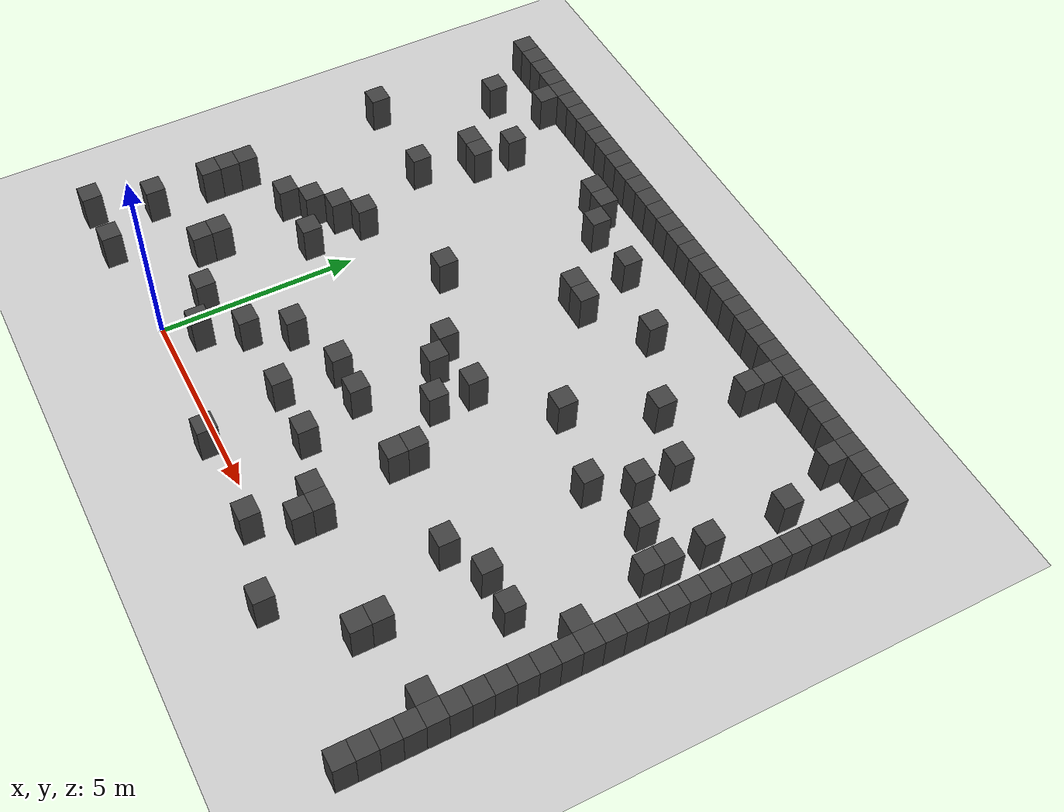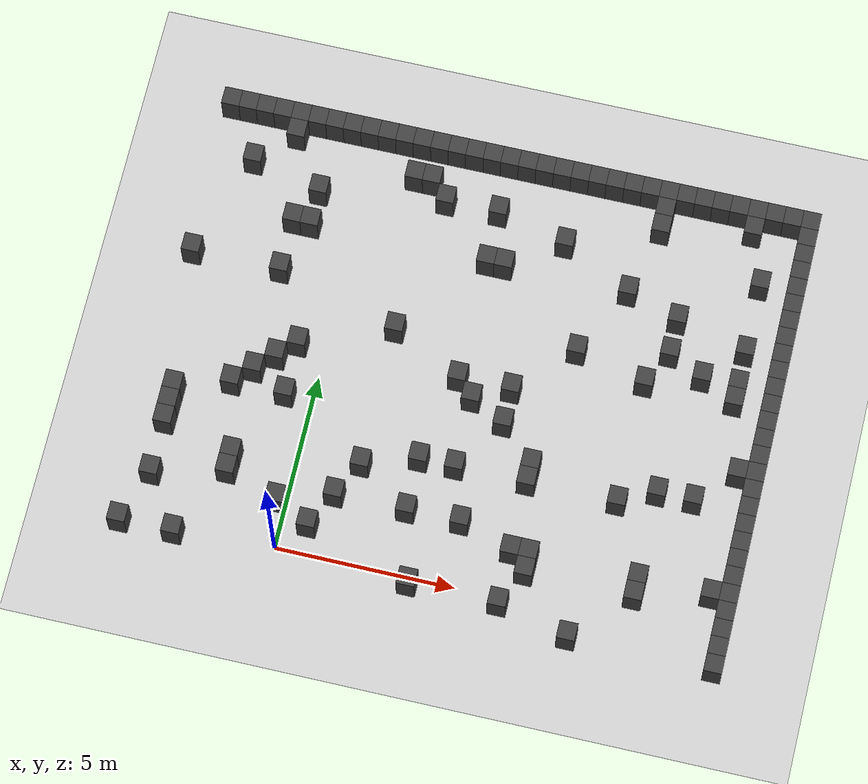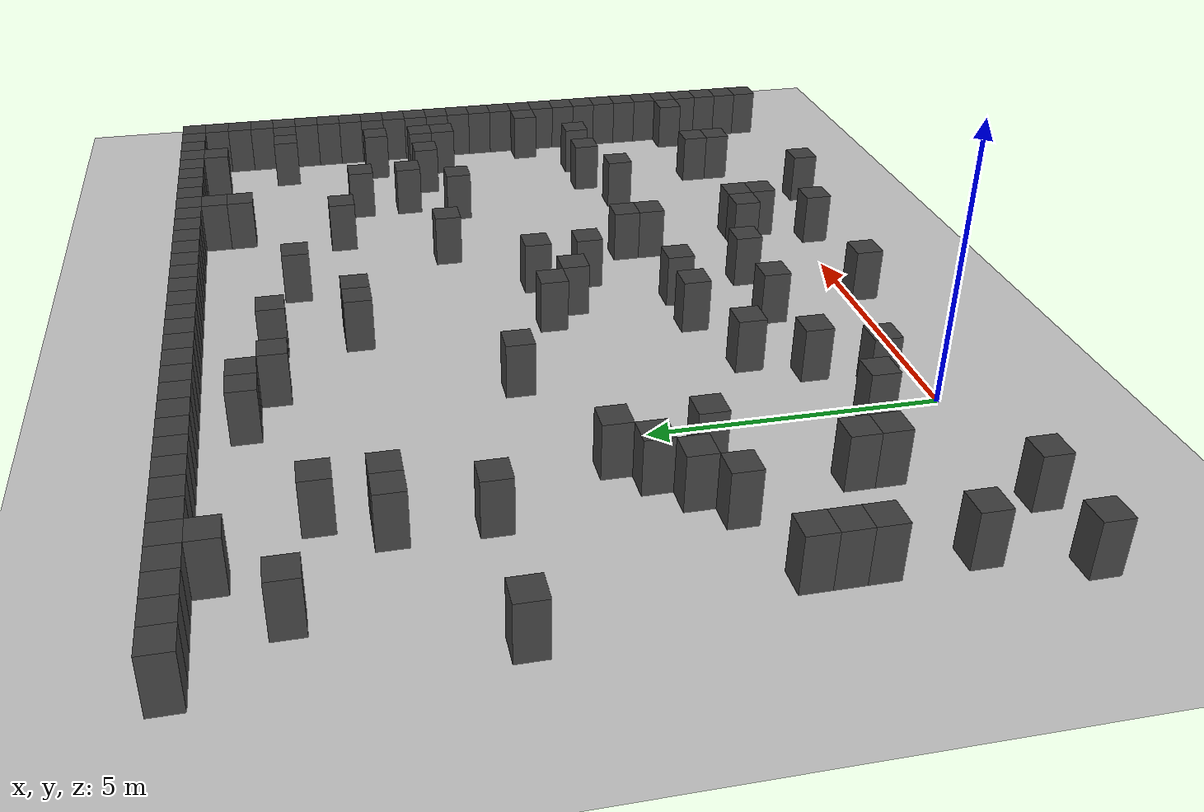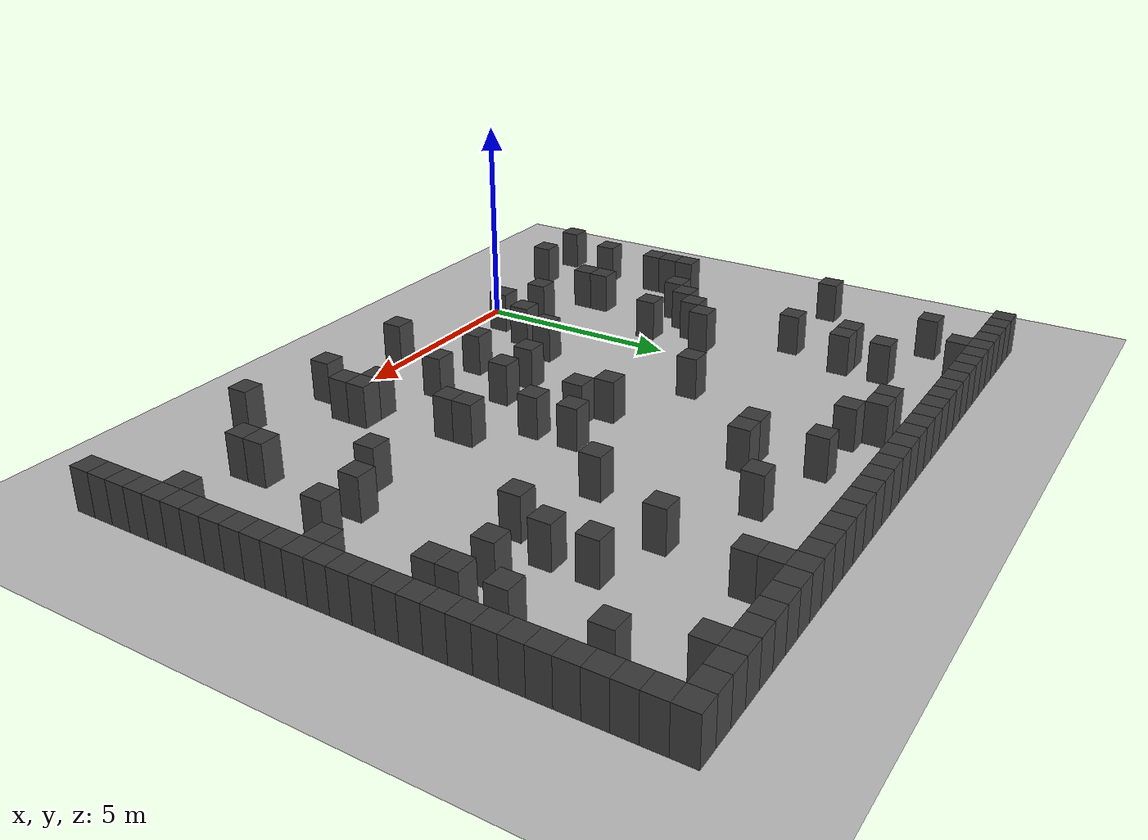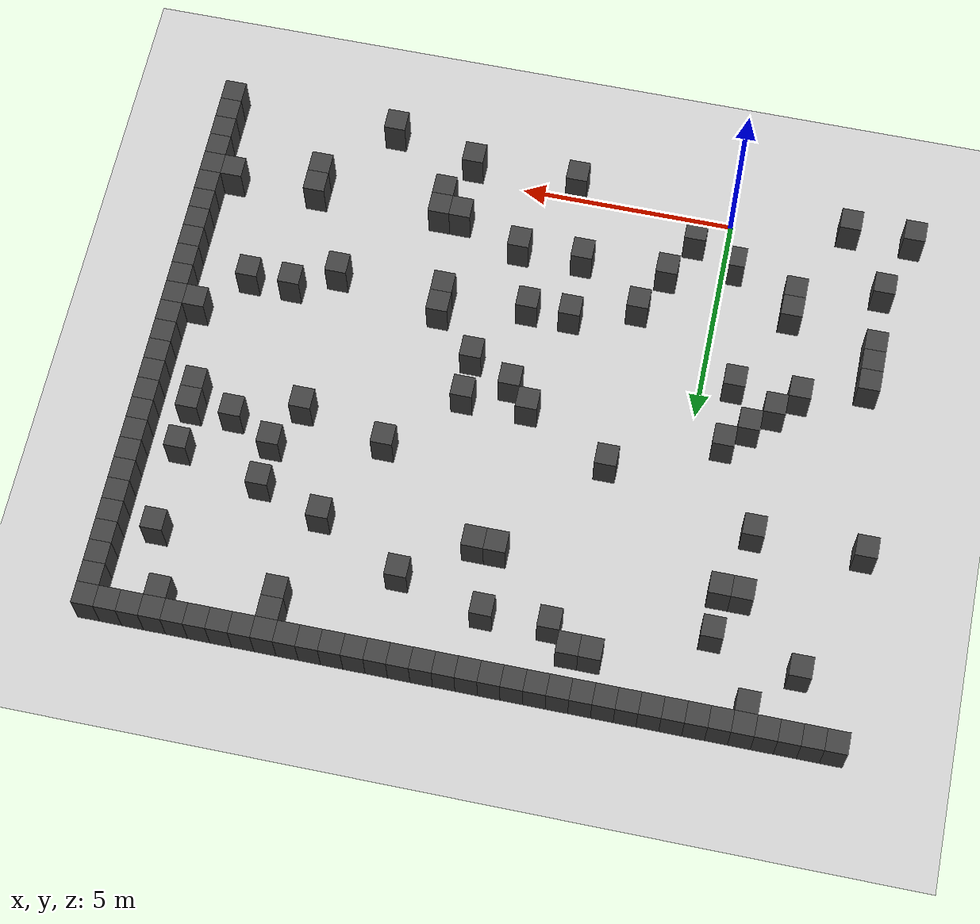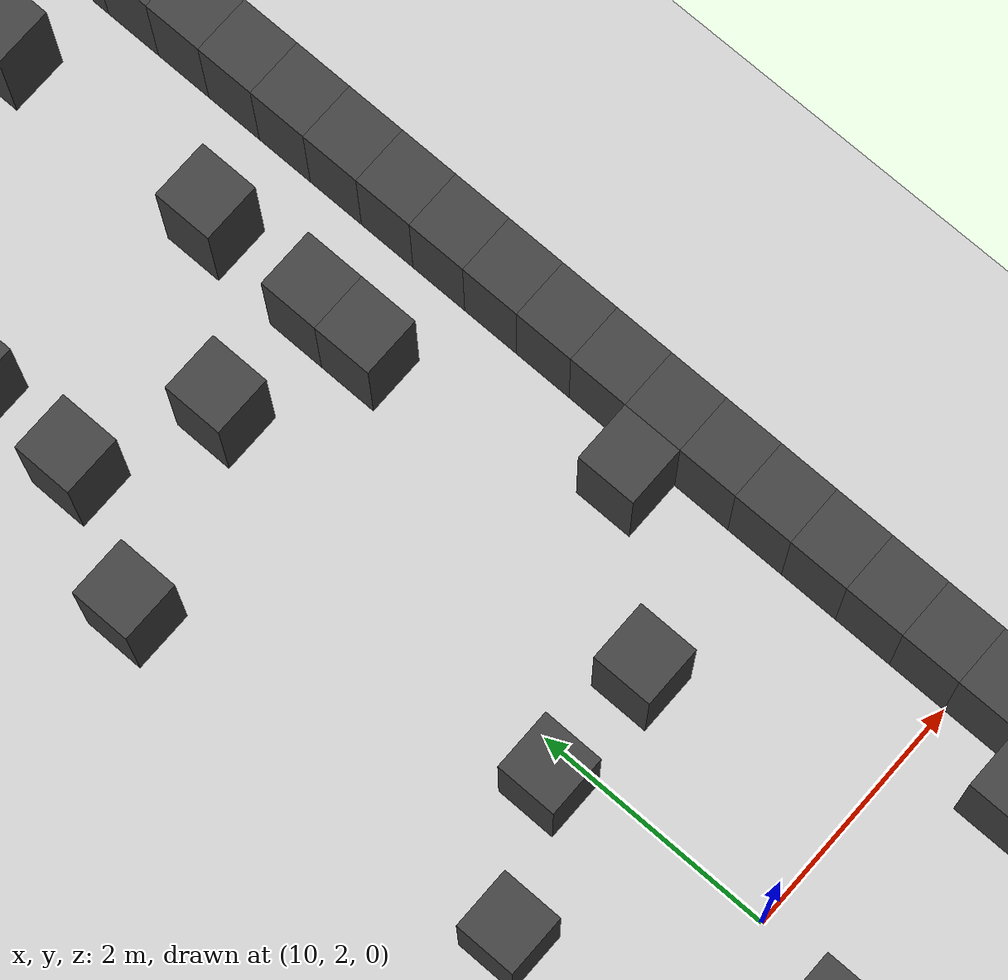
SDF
<sdf version="1.7">
 <world name="map_1352">
  <model name="ground_plane">
   <static>true</static>
   <link name="link">
    <collision name="collision">
     <geometry><plane><normal>0 0 1</normal><size>200 200</size></plane></geometry>
    </collision>
    <visual name="visual">
     <geometry><plane><normal>0 0 1</normal><size>200 200</size></plane></geometry>
     <material><ambient>0.8 0.8 0.8 1</ambient><diffuse>0.8 0.8 0.8 1</diffuse></material>
    </visual>
   </link>
  </model>
  <model name="maze_environment">
   <static>true</static>
   <link name="wall_16">
    <pose>-4.250 12.250 0.500 0 0 0</pose>
    <collision name="col"><geometry><box><size>0.5 0.5 1.0</size></box></geometry></collision>
    <visual name="vis">
     <geometry><box><size>0.5 0.5 1.0</size></box></geometry>
     <material><ambient>0.15 0.15 0.15 1</ambient><diffuse>0.25 0.25 0.25 1</diffuse></material>
    </visual>
   </link>
   <link name="wall_17">
    <pose>-3.750 12.250 0.500 0 0 0</pose>
    <collision name="col"><geometry><box><size>0.5 0.5 1.0</size></box></geometry></collision>
    <visual name="vis">
     <geometry><box><size>0.5 0.5 1.0</size></box></geometry>
     <material><ambient>0.15 0.15 0.15 1</ambient><diffuse>0.25 0.25 0.25 1</diffuse></material>
    </visual>
   </link>
   <link name="wall_18">
    <pose>-3.250 12.250 0.500 0 0 0</pose>
    <collision name="col"><geometry><box><size>0.5 0.5 1.0</size></box></geometry></collision>
    <visual name="vis">
     <geometry><box><size>0.5 0.5 1.0</size></box></geometry>
     <material><ambient>0.15 0.15 0.15 1</ambient><diffuse>0.25 0.25 0.25 1</diffuse></material>
    </visual>
   </link>
   <link name="wall_19">
    <pose>-2.750 12.250 0.500 0 0 0</pose>
    <collision name="col"><geometry><box><size>0.5 0.5 1.0</size></box></geometry></collision>
    <visual name="vis">
     <geometry><box><size>0.5 0.5 1.0</size></box></geometry>
     <material><ambient>0.15 0.15 0.15 1</ambient><diffuse>0.25 0.25 0.25 1</diffuse></material>
    </visual>
   </link>
   <link name="wall_20">
    <pose>-2.250 12.250 0.500 0 0 0</pose>
    <collision name="col"><geometry><box><size>0.5 0.5 1.0</size></box></geometry></collision>
    <visual name="vis">
     <geometry><box><size>0.5 0.5 1.0</size></box></geometry>
     <material><ambient>0.15 0.15 0.15 1</ambient><diffuse>0.25 0.25 0.25 1</diffuse></material>
    </visual>
   </link>
   <link name="wall_21">
    <pose>-1.750 12.250 0.500 0 0 0</pose>
    <collision name="col"><geometry><box><size>0.5 0.5 1.0</size></box></geometry></collision>
    <visual name="vis">
     <geometry><box><size>0.5 0.5 1.0</size></box></geometry>
     <material><ambient>0.15 0.15 0.15 1</ambient><diffuse>0.25 0.25 0.25 1</diffuse></material>
    </visual>
   </link>
   <link name="wall_22">
    <pose>-1.250 12.250 0.500 0 0 0</pose>
    <collision name="col"><geometry><box><size>0.5 0.5 1.0</size></box></geometry></collision>
    <visual name="vis">
     <geometry><box><size>0.5 0.5 1.0</size></box></geometry>
     <material><ambient>0.15 0.15 0.15 1</ambient><diffuse>0.25 0.25 0.25 1</diffuse></material>
    </visual>
   </link>
   <link name="wall_23">
    <pose>-0.750 12.250 0.500 0 0 0</pose>
    <collision name="col"><geometry><box><size>0.5 0.5 1.0</size></box></geometry></collision>
    <visual name="vis">
     <geometry><box><size>0.5 0.5 1.0</size></box></geometry>
     <material><ambient>0.15 0.15 0.15 1</ambient><diffuse>0.25 0.25 0.25 1</diffuse></material>
    </visual>
   </link>
   <link name="wall_24">
    <pose>-0.250 12.250 0.500 0 0 0</pose>
    <collision name="col"><geometry><box><size>0.5 0.5 1.0</size></box></geometry></collision>
    <visual name="vis">
     <geometry><box><size>0.5 0.5 1.0</size></box></geometry>
     <material><ambient>0.15 0.15 0.15 1</ambient><diffuse>0.25 0.25 0.25 1</diffuse></material>
    </visual>
   </link>
   <link name="wall_25">
    <pose>0.250 12.250 0.500 0 0 0</pose>
    <collision name="col"><geometry><box><size>0.5 0.5 1.0</size></box></geometry></collision>
    <visual name="vis">
     <geometry><box><size>0.5 0.5 1.0</size></box></geometry>
     <material><ambient>0.15 0.15 0.15 1</ambient><diffuse>0.25 0.25 0.25 1</diffuse></material>
    </visual>
   </link>
   <link name="wall_26">
    <pose>0.750 12.250 0.500 0 0 0</pose>
    <collision name="col"><geometry><box><size>0.5 0.5 1.0</size></box></geometry></collision>
    <visual name="vis">
     <geometry><box><size>0.5 0.5 1.0</size></box></geometry>
     <material><ambient>0.15 0.15 0.15 1</ambient><diffuse>0.25 0.25 0.25 1</diffuse></material>
    </visual>
   </link>
   <link name="wall_27">
    <pose>1.250 12.250 0.500 0 0 0</pose>
    <collision name="col"><geometry><box><size>0.5 0.5 1.0</size></box></geometry></collision>
    <visual name="vis">
     <geometry><box><size>0.5 0.5 1.0</size></box></geometry>
     <material><ambient>0.15 0.15 0.15 1</ambient><diffuse>0.25 0.25 0.25 1</diffuse></material>
    </visual>
   </link>
   <link name="wall_28">
    <pose>1.750 12.250 0.500 0 0 0</pose>
    <collision name="col"><geometry><box><size>0.5 0.5 1.0</size></box></geometry></collision>
    <visual name="vis">
     <geometry><box><size>0.5 0.5 1.0</size></box></geometry>
     <material><ambient>0.15 0.15 0.15 1</ambient><diffuse>0.25 0.25 0.25 1</diffuse></material>
    </visual>
   </link>
   <link name="wall_29">
    <pose>2.250 12.250 0.500 0 0 0</pose>
    <collision name="col"><geometry><box><size>0.5 0.5 1.0</size></box></geometry></collision>
    <visual name="vis">
     <geometry><box><size>0.5 0.5 1.0</size></box></geometry>
     <material><ambient>0.15 0.15 0.15 1</ambient><diffuse>0.25 0.25 0.25 1</diffuse></material>
    </visual>
   </link>
   <link name="wall_30">
    <pose>2.750 12.250 0.500 0 0 0</pose>
    <collision name="col"><geometry><box><size>0.5 0.5 1.0</size></box></geometry></collision>
    <visual name="vis">
     <geometry><box><size>0.5 0.5 1.0</size></box></geometry>
     <material><ambient>0.15 0.15 0.15 1</ambient><diffuse>0.25 0.25 0.25 1</diffuse></material>
    </visual>
   </link>
   <link name="wall_31">
    <pose>3.250 12.250 0.500 0 0 0</pose>
    <collision name="col"><geometry><box><size>0.5 0.5 1.0</size></box></geometry></collision>
    <visual name="vis">
     <geometry><box><size>0.5 0.5 1.0</size></box></geometry>
     <material><ambient>0.15 0.15 0.15 1</ambient><diffuse>0.25 0.25 0.25 1</diffuse></material>
    </visual>
   </link>
   <link name="wall_32">
    <pose>3.750 12.250 0.500 0 0 0</pose>
    <collision name="col"><geometry><box><size>0.5 0.5 1.0</size></box></geometry></collision>
    <visual name="vis">
     <geometry><box><size>0.5 0.5 1.0</size></box></geometry>
     <material><ambient>0.15 0.15 0.15 1</ambient><diffuse>0.25 0.25 0.25 1</diffuse></material>
    </visual>
   </link>
   <link name="wall_33">
    <pose>4.250 12.250 0.500 0 0 0</pose>
    <collision name="col"><geometry><box><size>0.5 0.5 1.0</size></box></geometry></collision>
    <visual name="vis">
     <geometry><box><size>0.5 0.5 1.0</size></box></geometry>
     <material><ambient>0.15 0.15 0.15 1</ambient><diffuse>0.25 0.25 0.25 1</diffuse></material>
    </visual>
   </link>
   <link name="wall_34">
    <pose>4.750 12.250 0.500 0 0 0</pose>
    <collision name="col"><geometry><box><size>0.5 0.5 1.0</size></box></geometry></collision>
    <visual name="vis">
     <geometry><box><size>0.5 0.5 1.0</size></box></geometry>
     <material><ambient>0.15 0.15 0.15 1</ambient><diffuse>0.25 0.25 0.25 1</diffuse></material>
    </visual>
   </link>
   <link name="wall_35">
    <pose>5.250 12.250 0.500 0 0 0</pose>
    <collision name="col"><geometry><box><size>0.5 0.5 1.0</size></box></geometry></collision>
    <visual name="vis">
     <geometry><box><size>0.5 0.5 1.0</size></box></geometry>
     <material><ambient>0.15 0.15 0.15 1</ambient><diffuse>0.25 0.25 0.25 1</diffuse></material>
    </visual>
   </link>
   <link name="wall_36">
    <pose>5.750 12.250 0.500 0 0 0</pose>
    <collision name="col"><geometry><box><size>0.5 0.5 1.0</size></box></geometry></collision>
    <visual name="vis">
     <geometry><box><size>0.5 0.5 1.0</size></box></geometry>
     <material><ambient>0.15 0.15 0.15 1</ambient><diffuse>0.25 0.25 0.25 1</diffuse></material>
    </visual>
   </link>
   <link name="wall_37">
    <pose>6.250 12.250 0.500 0 0 0</pose>
    <collision name="col"><geometry><box><size>0.5 0.5 1.0</size></box></geometry></collision>
    <visual name="vis">
     <geometry><box><size>0.5 0.5 1.0</size></box></geometry>
     <material><ambient>0.15 0.15 0.15 1</ambient><diffuse>0.25 0.25 0.25 1</diffuse></material>
    </visual>
   </link>
   <link name="wall_38">
    <pose>6.750 12.250 0.500 0 0 0</pose>
    <collision name="col"><geometry><box><size>0.5 0.5 1.0</size></box></geometry></collision>
    <visual name="vis">
     <geometry><box><size>0.5 0.5 1.0</size></box></geometry>
     <material><ambient>0.15 0.15 0.15 1</ambient><diffuse>0.25 0.25 0.25 1</diffuse></material>
    </visual>
   </link>
   <link name="wall_39">
    <pose>7.250 12.250 0.500 0 0 0</pose>
    <collision name="col"><geometry><box><size>0.5 0.5 1.0</size></box></geometry></collision>
    <visual name="vis">
     <geometry><box><size>0.5 0.5 1.0</size></box></geometry>
     <material><ambient>0.15 0.15 0.15 1</ambient><diffuse>0.25 0.25 0.25 1</diffuse></material>
    </visual>
   </link>
   <link name="wall_40">
    <pose>7.750 12.250 0.500 0 0 0</pose>
    <collision name="col"><geometry><box><size>0.5 0.5 1.0</size></box></geometry></collision>
    <visual name="vis">
     <geometry><box><size>0.5 0.5 1.0</size></box></geometry>
     <material><ambient>0.15 0.15 0.15 1</ambient><diffuse>0.25 0.25 0.25 1</diffuse></material>
    </visual>
   </link>
   <link name="wall_41">
    <pose>8.250 12.250 0.500 0 0 0</pose>
    <collision name="col"><geometry><box><size>0.5 0.5 1.0</size></box></geometry></collision>
    <visual name="vis">
     <geometry><box><size>0.5 0.5 1.0</size></box></geometry>
     <material><ambient>0.15 0.15 0.15 1</ambient><diffuse>0.25 0.25 0.25 1</diffuse></material>
    </visual>
   </link>
   <link name="wall_42">
    <pose>8.750 12.250 0.500 0 0 0</pose>
    <collision name="col"><geometry><box><size>0.5 0.5 1.0</size></box></geometry></collision>
    <visual name="vis">
     <geometry><box><size>0.5 0.5 1.0</size></box></geometry>
     <material><ambient>0.15 0.15 0.15 1</ambient><diffuse>0.25 0.25 0.25 1</diffuse></material>
    </visual>
   </link>
   <link name="wall_43">
    <pose>9.250 12.250 0.500 0 0 0</pose>
    <collision name="col"><geometry><box><size>0.5 0.5 1.0</size></box></geometry></collision>
    <visual name="vis">
     <geometry><box><size>0.5 0.5 1.0</size></box></geometry>
     <material><ambient>0.15 0.15 0.15 1</ambient><diffuse>0.25 0.25 0.25 1</diffuse></material>
    </visual>
   </link>
   <link name="wall_44">
    <pose>9.750 12.250 0.500 0 0 0</pose>
    <collision name="col"><geometry><box><size>0.5 0.5 1.0</size></box></geometry></collision>
    <visual name="vis">
     <geometry><box><size>0.5 0.5 1.0</size></box></geometry>
     <material><ambient>0.15 0.15 0.15 1</ambient><diffuse>0.25 0.25 0.25 1</diffuse></material>
    </visual>
   </link>
   <link name="wall_45">
    <pose>10.250 12.250 0.500 0 0 0</pose>
    <collision name="col"><geometry><box><size>0.5 0.5 1.0</size></box></geometry></collision>
    <visual name="vis">
     <geometry><box><size>0.5 0.5 1.0</size></box></geometry>
     <material><ambient>0.15 0.15 0.15 1</ambient><diffuse>0.25 0.25 0.25 1</diffuse></material>
    </visual>
   </link>
   <link name="wall_46">
    <pose>10.750 12.250 0.500 0 0 0</pose>
    <collision name="col"><geometry><box><size>0.5 0.5 1.0</size></box></geometry></collision>
    <visual name="vis">
     <geometry><box><size>0.5 0.5 1.0</size></box></geometry>
     <material><ambient>0.15 0.15 0.15 1</ambient><diffuse>0.25 0.25 0.25 1</diffuse></material>
    </visual>
   </link>
   <link name="wall_47">
    <pose>11.250 12.250 0.500 0 0 0</pose>
    <collision name="col"><geometry><box><size>0.5 0.5 1.0</size></box></geometry></collision>
    <visual name="vis">
     <geometry><box><size>0.5 0.5 1.0</size></box></geometry>
     <material><ambient>0.15 0.15 0.15 1</ambient><diffuse>0.25 0.25 0.25 1</diffuse></material>
    </visual>
   </link>
   <link name="wall_48">
    <pose>11.750 12.250 0.500 0 0 0</pose>
    <collision name="col"><geometry><box><size>0.5 0.5 1.0</size></box></geometry></collision>
    <visual name="vis">
     <geometry><box><size>0.5 0.5 1.0</size></box></geometry>
     <material><ambient>0.15 0.15 0.15 1</ambient><diffuse>0.25 0.25 0.25 1</diffuse></material>
    </visual>
   </link>
   <link name="wall_49">
    <pose>12.250 12.250 0.500 0 0 0</pose>
    <collision name="col"><geometry><box><size>0.5 0.5 1.0</size></box></geometry></collision>
    <visual name="vis">
     <geometry><box><size>0.5 0.5 1.0</size></box></geometry>
     <material><ambient>0.15 0.15 0.15 1</ambient><diffuse>0.25 0.25 0.25 1</diffuse></material>
    </visual>
   </link>
   <link name="wall_51">
    <pose>-2.250 11.750 0.500 0 0 0</pose>
    <collision name="col"><geometry><box><size>0.5 0.5 1.0</size></box></geometry></collision>
    <visual name="vis">
     <geometry><box><size>0.5 0.5 1.0</size></box></geometry>
     <material><ambient>0.15 0.15 0.15 1</ambient><diffuse>0.25 0.25 0.25 1</diffuse></material>
    </visual>
   </link>
   <link name="wall_52">
    <pose>8.250 11.750 0.500 0 0 0</pose>
    <collision name="col"><geometry><box><size>0.5 0.5 1.0</size></box></geometry></collision>
    <visual name="vis">
     <geometry><box><size>0.5 0.5 1.0</size></box></geometry>
     <material><ambient>0.15 0.15 0.15 1</ambient><diffuse>0.25 0.25 0.25 1</diffuse></material>
    </visual>
   </link>
   <link name="wall_53">
    <pose>10.750 11.750 0.500 0 0 0</pose>
    <collision name="col"><geometry><box><size>0.5 0.5 1.0</size></box></geometry></collision>
    <visual name="vis">
     <geometry><box><size>0.5 0.5 1.0</size></box></geometry>
     <material><ambient>0.15 0.15 0.15 1</ambient><diffuse>0.25 0.25 0.25 1</diffuse></material>
    </visual>
   </link>
   <link name="wall_54">
    <pose>12.250 11.750 0.500 0 0 0</pose>
    <collision name="col"><geometry><box><size>0.5 0.5 1.0</size></box></geometry></collision>
    <visual name="vis">
     <geometry><box><size>0.5 0.5 1.0</size></box></geometry>
     <material><ambient>0.15 0.15 0.15 1</ambient><diffuse>0.25 0.25 0.25 1</diffuse></material>
    </visual>
   </link>
   <link name="wall_61">
    <pose>1.250 11.250 0.500 0 0 0</pose>
    <collision name="col"><geometry><box><size>0.5 0.5 1.0</size></box></geometry></collision>
    <visual name="vis">
     <geometry><box><size>0.5 0.5 1.0</size></box></geometry>
     <material><ambient>0.15 0.15 0.15 1</ambient><diffuse>0.25 0.25 0.25 1</diffuse></material>
    </visual>
   </link>
   <link name="wall_62">
    <pose>1.750 11.250 0.500 0 0 0</pose>
    <collision name="col"><geometry><box><size>0.5 0.5 1.0</size></box></geometry></collision>
    <visual name="vis">
     <geometry><box><size>0.5 0.5 1.0</size></box></geometry>
     <material><ambient>0.15 0.15 0.15 1</ambient><diffuse>0.25 0.25 0.25 1</diffuse></material>
    </visual>
   </link>
   <link name="wall_63">
    <pose>8.250 11.250 0.500 0 0 0</pose>
    <collision name="col"><geometry><box><size>0.5 0.5 1.0</size></box></geometry></collision>
    <visual name="vis">
     <geometry><box><size>0.5 0.5 1.0</size></box></geometry>
     <material><ambient>0.15 0.15 0.15 1</ambient><diffuse>0.25 0.25 0.25 1</diffuse></material>
    </visual>
   </link>
   <link name="wall_64">
    <pose>12.250 11.250 0.500 0 0 0</pose>
    <collision name="col"><geometry><box><size>0.5 0.5 1.0</size></box></geometry></collision>
    <visual name="vis">
     <geometry><box><size>0.5 0.5 1.0</size></box></geometry>
     <material><ambient>0.15 0.15 0.15 1</ambient><diffuse>0.25 0.25 0.25 1</diffuse></material>
    </visual>
   </link>
   <link name="wall_67">
    <pose>-3.250 10.750 0.500 0 0 0</pose>
    <collision name="col"><geometry><box><size>0.5 0.5 1.0</size></box></geometry></collision>
    <visual name="vis">
     <geometry><box><size>0.5 0.5 1.0</size></box></geometry>
     <material><ambient>0.15 0.15 0.15 1</ambient><diffuse>0.25 0.25 0.25 1</diffuse></material>
    </visual>
   </link>
   <link name="wall_68">
    <pose>2.250 10.750 0.500 0 0 0</pose>
    <collision name="col"><geometry><box><size>0.5 0.5 1.0</size></box></geometry></collision>
    <visual name="vis">
     <geometry><box><size>0.5 0.5 1.0</size></box></geometry>
     <material><ambient>0.15 0.15 0.15 1</ambient><diffuse>0.25 0.25 0.25 1</diffuse></material>
    </visual>
   </link>
   <link name="wall_69">
    <pose>3.750 10.750 0.500 0 0 0</pose>
    <collision name="col"><geometry><box><size>0.5 0.5 1.0</size></box></geometry></collision>
    <visual name="vis">
     <geometry><box><size>0.5 0.5 1.0</size></box></geometry>
     <material><ambient>0.15 0.15 0.15 1</ambient><diffuse>0.25 0.25 0.25 1</diffuse></material>
    </visual>
   </link>
   <link name="wall_70">
    <pose>12.250 10.750 0.500 0 0 0</pose>
    <collision name="col"><geometry><box><size>0.5 0.5 1.0</size></box></geometry></collision>
    <visual name="vis">
     <geometry><box><size>0.5 0.5 1.0</size></box></geometry>
     <material><ambient>0.15 0.15 0.15 1</ambient><diffuse>0.25 0.25 0.25 1</diffuse></material>
    </visual>
   </link>
   <link name="wall_74">
    <pose>-1.250 10.250 0.500 0 0 0</pose>
    <collision name="col"><geometry><box><size>0.5 0.5 1.0</size></box></geometry></collision>
    <visual name="vis">
     <geometry><box><size>0.5 0.5 1.0</size></box></geometry>
     <material><ambient>0.15 0.15 0.15 1</ambient><diffuse>0.25 0.25 0.25 1</diffuse></material>
    </visual>
   </link>
   <link name="wall_75">
    <pose>5.750 10.250 0.500 0 0 0</pose>
    <collision name="col"><geometry><box><size>0.5 0.5 1.0</size></box></geometry></collision>
    <visual name="vis">
     <geometry><box><size>0.5 0.5 1.0</size></box></geometry>
     <material><ambient>0.15 0.15 0.15 1</ambient><diffuse>0.25 0.25 0.25 1</diffuse></material>
    </visual>
   </link>
   <link name="wall_76">
    <pose>11.250 10.250 0.500 0 0 0</pose>
    <collision name="col"><geometry><box><size>0.5 0.5 1.0</size></box></geometry></collision>
    <visual name="vis">
     <geometry><box><size>0.5 0.5 1.0</size></box></geometry>
     <material><ambient>0.15 0.15 0.15 1</ambient><diffuse>0.25 0.25 0.25 1</diffuse></material>
    </visual>
   </link>
   <link name="wall_77">
    <pose>12.250 10.250 0.500 0 0 0</pose>
    <collision name="col"><geometry><box><size>0.5 0.5 1.0</size></box></geometry></collision>
    <visual name="vis">
     <geometry><box><size>0.5 0.5 1.0</size></box></geometry>
     <material><ambient>0.15 0.15 0.15 1</ambient><diffuse>0.25 0.25 0.25 1</diffuse></material>
    </visual>
   </link>
   <link name="wall_79">
    <pose>12.250 9.750 0.500 0 0 0</pose>
    <collision name="col"><geometry><box><size>0.5 0.5 1.0</size></box></geometry></collision>
    <visual name="vis">
     <geometry><box><size>0.5 0.5 1.0</size></box></geometry>
     <material><ambient>0.15 0.15 0.15 1</ambient><diffuse>0.25 0.25 0.25 1</diffuse></material>
    </visual>
   </link>
   <link name="wall_81">
    <pose>-1.750 9.250 0.500 0 0 0</pose>
    <collision name="col"><geometry><box><size>0.5 0.5 1.0</size></box></geometry></collision>
    <visual name="vis">
     <geometry><box><size>0.5 0.5 1.0</size></box></geometry>
     <material><ambient>0.15 0.15 0.15 1</ambient><diffuse>0.25 0.25 0.25 1</diffuse></material>
    </visual>
   </link>
   <link name="wall_82">
    <pose>-1.250 9.250 0.500 0 0 0</pose>
    <collision name="col"><geometry><box><size>0.5 0.5 1.0</size></box></geometry></collision>
    <visual name="vis">
     <geometry><box><size>0.5 0.5 1.0</size></box></geometry>
     <material><ambient>0.15 0.15 0.15 1</ambient><diffuse>0.25 0.25 0.25 1</diffuse></material>
    </visual>
   </link>
   <link name="wall_83">
    <pose>3.750 9.250 0.500 0 0 0</pose>
    <collision name="col"><geometry><box><size>0.5 0.5 1.0</size></box></geometry></collision>
    <visual name="vis">
     <geometry><box><size>0.5 0.5 1.0</size></box></geometry>
     <material><ambient>0.15 0.15 0.15 1</ambient><diffuse>0.25 0.25 0.25 1</diffuse></material>
    </visual>
   </link>
   <link name="wall_84">
    <pose>4.250 9.250 0.500 0 0 0</pose>
    <collision name="col"><geometry><box><size>0.5 0.5 1.0</size></box></geometry></collision>
    <visual name="vis">
     <geometry><box><size>0.5 0.5 1.0</size></box></geometry>
     <material><ambient>0.15 0.15 0.15 1</ambient><diffuse>0.25 0.25 0.25 1</diffuse></material>
    </visual>
   </link>
   <link name="wall_85">
    <pose>7.750 9.250 0.500 0 0 0</pose>
    <collision name="col"><geometry><box><size>0.5 0.5 1.0</size></box></geometry></collision>
    <visual name="vis">
     <geometry><box><size>0.5 0.5 1.0</size></box></geometry>
     <material><ambient>0.15 0.15 0.15 1</ambient><diffuse>0.25 0.25 0.25 1</diffuse></material>
    </visual>
   </link>
   <link name="wall_86">
    <pose>12.250 9.250 0.500 0 0 0</pose>
    <collision name="col"><geometry><box><size>0.5 0.5 1.0</size></box></geometry></collision>
    <visual name="vis">
     <geometry><box><size>0.5 0.5 1.0</size></box></geometry>
     <material><ambient>0.15 0.15 0.15 1</ambient><diffuse>0.25 0.25 0.25 1</diffuse></material>
    </visual>
   </link>
   <link name="wall_89">
    <pose>9.250 8.750 0.500 0 0 0</pose>
    <collision name="col"><geometry><box><size>0.5 0.5 1.0</size></box></geometry></collision>
    <visual name="vis">
     <geometry><box><size>0.5 0.5 1.0</size></box></geometry>
     <material><ambient>0.15 0.15 0.15 1</ambient><diffuse>0.25 0.25 0.25 1</diffuse></material>
    </visual>
   </link>
   <link name="wall_90">
    <pose>12.250 8.750 0.500 0 0 0</pose>
    <collision name="col"><geometry><box><size>0.5 0.5 1.0</size></box></geometry></collision>
    <visual name="vis">
     <geometry><box><size>0.5 0.5 1.0</size></box></geometry>
     <material><ambient>0.15 0.15 0.15 1</ambient><diffuse>0.25 0.25 0.25 1</diffuse></material>
    </visual>
   </link>
   <link name="wall_92">
    <pose>11.250 8.250 0.500 0 0 0</pose>
    <collision name="col"><geometry><box><size>0.5 0.5 1.0</size></box></geometry></collision>
    <visual name="vis">
     <geometry><box><size>0.5 0.5 1.0</size></box></geometry>
     <material><ambient>0.15 0.15 0.15 1</ambient><diffuse>0.25 0.25 0.25 1</diffuse></material>
    </visual>
   </link>
   <link name="wall_93">
    <pose>12.250 8.250 0.500 0 0 0</pose>
    <collision name="col"><geometry><box><size>0.5 0.5 1.0</size></box></geometry></collision>
    <visual name="vis">
     <geometry><box><size>0.5 0.5 1.0</size></box></geometry>
     <material><ambient>0.15 0.15 0.15 1</ambient><diffuse>0.25 0.25 0.25 1</diffuse></material>
    </visual>
   </link>
   <link name="wall_97">
    <pose>-4.250 7.750 0.500 0 0 0</pose>
    <collision name="col"><geometry><box><size>0.5 0.5 1.0</size></box></geometry></collision>
    <visual name="vis">
     <geometry><box><size>0.5 0.5 1.0</size></box></geometry>
     <material><ambient>0.15 0.15 0.15 1</ambient><diffuse>0.25 0.25 0.25 1</diffuse></material>
    </visual>
   </link>
   <link name="wall_98">
    <pose>-1.750 7.750 0.500 0 0 0</pose>
    <collision name="col"><geometry><box><size>0.5 0.5 1.0</size></box></geometry></collision>
    <visual name="vis">
     <geometry><box><size>0.5 0.5 1.0</size></box></geometry>
     <material><ambient>0.15 0.15 0.15 1</ambient><diffuse>0.25 0.25 0.25 1</diffuse></material>
    </visual>
   </link>
   <link name="wall_99">
    <pose>9.250 7.750 0.500 0 0 0</pose>
    <collision name="col"><geometry><box><size>0.5 0.5 1.0</size></box></geometry></collision>
    <visual name="vis">
     <geometry><box><size>0.5 0.5 1.0</size></box></geometry>
     <material><ambient>0.15 0.15 0.15 1</ambient><diffuse>0.25 0.25 0.25 1</diffuse></material>
    </visual>
   </link>
   <link name="wall_100">
    <pose>12.250 7.750 0.500 0 0 0</pose>
    <collision name="col"><geometry><box><size>0.5 0.5 1.0</size></box></geometry></collision>
    <visual name="vis">
     <geometry><box><size>0.5 0.5 1.0</size></box></geometry>
     <material><ambient>0.15 0.15 0.15 1</ambient><diffuse>0.25 0.25 0.25 1</diffuse></material>
    </visual>
   </link>
   <link name="wall_102">
    <pose>6.750 7.250 0.500 0 0 0</pose>
    <collision name="col"><geometry><box><size>0.5 0.5 1.0</size></box></geometry></collision>
    <visual name="vis">
     <geometry><box><size>0.5 0.5 1.0</size></box></geometry>
     <material><ambient>0.15 0.15 0.15 1</ambient><diffuse>0.25 0.25 0.25 1</diffuse></material>
    </visual>
   </link>
   <link name="wall_103">
    <pose>10.250 7.250 0.500 0 0 0</pose>
    <collision name="col"><geometry><box><size>0.5 0.5 1.0</size></box></geometry></collision>
    <visual name="vis">
     <geometry><box><size>0.5 0.5 1.0</size></box></geometry>
     <material><ambient>0.15 0.15 0.15 1</ambient><diffuse>0.25 0.25 0.25 1</diffuse></material>
    </visual>
   </link>
   <link name="wall_104">
    <pose>11.250 7.250 0.500 0 0 0</pose>
    <collision name="col"><geometry><box><size>0.5 0.5 1.0</size></box></geometry></collision>
    <visual name="vis">
     <geometry><box><size>0.5 0.5 1.0</size></box></geometry>
     <material><ambient>0.15 0.15 0.15 1</ambient><diffuse>0.25 0.25 0.25 1</diffuse></material>
    </visual>
   </link>
   <link name="wall_105">
    <pose>12.250 7.250 0.500 0 0 0</pose>
    <collision name="col"><geometry><box><size>0.5 0.5 1.0</size></box></geometry></collision>
    <visual name="vis">
     <geometry><box><size>0.5 0.5 1.0</size></box></geometry>
     <material><ambient>0.15 0.15 0.15 1</ambient><diffuse>0.25 0.25 0.25 1</diffuse></material>
    </visual>
   </link>
   <link name="wall_109">
    <pose>1.750 6.750 0.500 0 0 0</pose>
    <collision name="col"><geometry><box><size>0.5 0.5 1.0</size></box></geometry></collision>
    <visual name="vis">
     <geometry><box><size>0.5 0.5 1.0</size></box></geometry>
     <material><ambient>0.15 0.15 0.15 1</ambient><diffuse>0.25 0.25 0.25 1</diffuse></material>
    </visual>
   </link>
   <link name="wall_110">
    <pose>8.750 6.750 0.500 0 0 0</pose>
    <collision name="col"><geometry><box><size>0.5 0.5 1.0</size></box></geometry></collision>
    <visual name="vis">
     <geometry><box><size>0.5 0.5 1.0</size></box></geometry>
     <material><ambient>0.15 0.15 0.15 1</ambient><diffuse>0.25 0.25 0.25 1</diffuse></material>
    </visual>
   </link>
   <link name="wall_111">
    <pose>11.250 6.750 0.500 0 0 0</pose>
    <collision name="col"><geometry><box><size>0.5 0.5 1.0</size></box></geometry></collision>
    <visual name="vis">
     <geometry><box><size>0.5 0.5 1.0</size></box></geometry>
     <material><ambient>0.15 0.15 0.15 1</ambient><diffuse>0.25 0.25 0.25 1</diffuse></material>
    </visual>
   </link>
   <link name="wall_112">
    <pose>12.250 6.750 0.500 0 0 0</pose>
    <collision name="col"><geometry><box><size>0.5 0.5 1.0</size></box></geometry></collision>
    <visual name="vis">
     <geometry><box><size>0.5 0.5 1.0</size></box></geometry>
     <material><ambient>0.15 0.15 0.15 1</ambient><diffuse>0.25 0.25 0.25 1</diffuse></material>
    </visual>
   </link>
   <link name="wall_117">
    <pose>12.250 6.250 0.500 0 0 0</pose>
    <collision name="col"><geometry><box><size>0.5 0.5 1.0</size></box></geometry></collision>
    <visual name="vis">
     <geometry><box><size>0.5 0.5 1.0</size></box></geometry>
     <material><ambient>0.15 0.15 0.15 1</ambient><diffuse>0.25 0.25 0.25 1</diffuse></material>
    </visual>
   </link>
   <link name="wall_121">
    <pose>-0.750 5.750 0.500 0 0 0</pose>
    <collision name="col"><geometry><box><size>0.5 0.5 1.0</size></box></geometry></collision>
    <visual name="vis">
     <geometry><box><size>0.5 0.5 1.0</size></box></geometry>
     <material><ambient>0.15 0.15 0.15 1</ambient><diffuse>0.25 0.25 0.25 1</diffuse></material>
    </visual>
   </link>
   <link name="wall_122">
    <pose>3.750 5.750 0.500 0 0 0</pose>
    <collision name="col"><geometry><box><size>0.5 0.5 1.0</size></box></geometry></collision>
    <visual name="vis">
     <geometry><box><size>0.5 0.5 1.0</size></box></geometry>
     <material><ambient>0.15 0.15 0.15 1</ambient><diffuse>0.25 0.25 0.25 1</diffuse></material>
    </visual>
   </link>
   <link name="wall_123">
    <pose>5.250 5.750 0.500 0 0 0</pose>
    <collision name="col"><geometry><box><size>0.5 0.5 1.0</size></box></geometry></collision>
    <visual name="vis">
     <geometry><box><size>0.5 0.5 1.0</size></box></geometry>
     <material><ambient>0.15 0.15 0.15 1</ambient><diffuse>0.25 0.25 0.25 1</diffuse></material>
    </visual>
   </link>
   <link name="wall_124">
    <pose>12.250 5.750 0.500 0 0 0</pose>
    <collision name="col"><geometry><box><size>0.5 0.5 1.0</size></box></geometry></collision>
    <visual name="vis">
     <geometry><box><size>0.5 0.5 1.0</size></box></geometry>
     <material><ambient>0.15 0.15 0.15 1</ambient><diffuse>0.25 0.25 0.25 1</diffuse></material>
    </visual>
   </link>
   <link name="wall_127">
    <pose>-1.250 5.250 0.500 0 0 0</pose>
    <collision name="col"><geometry><box><size>0.5 0.5 1.0</size></box></geometry></collision>
    <visual name="vis">
     <geometry><box><size>0.5 0.5 1.0</size></box></geometry>
     <material><ambient>0.15 0.15 0.15 1</ambient><diffuse>0.25 0.25 0.25 1</diffuse></material>
    </visual>
   </link>
   <link name="wall_128">
    <pose>4.250 5.250 0.500 0 0 0</pose>
    <collision name="col"><geometry><box><size>0.5 0.5 1.0</size></box></geometry></collision>
    <visual name="vis">
     <geometry><box><size>0.5 0.5 1.0</size></box></geometry>
     <material><ambient>0.15 0.15 0.15 1</ambient><diffuse>0.25 0.25 0.25 1</diffuse></material>
    </visual>
   </link>
   <link name="wall_129">
    <pose>12.250 5.250 0.500 0 0 0</pose>
    <collision name="col"><geometry><box><size>0.5 0.5 1.0</size></box></geometry></collision>
    <visual name="vis">
     <geometry><box><size>0.5 0.5 1.0</size></box></geometry>
     <material><ambient>0.15 0.15 0.15 1</ambient><diffuse>0.25 0.25 0.25 1</diffuse></material>
    </visual>
   </link>
   <link name="wall_131">
    <pose>-1.750 4.750 0.500 0 0 0</pose>
    <collision name="col"><geometry><box><size>0.5 0.5 1.0</size></box></geometry></collision>
    <visual name="vis">
     <geometry><box><size>0.5 0.5 1.0</size></box></geometry>
     <material><ambient>0.15 0.15 0.15 1</ambient><diffuse>0.25 0.25 0.25 1</diffuse></material>
    </visual>
   </link>
   <link name="wall_132">
    <pose>5.250 4.750 0.500 0 0 0</pose>
    <collision name="col"><geometry><box><size>0.5 0.5 1.0</size></box></geometry></collision>
    <visual name="vis">
     <geometry><box><size>0.5 0.5 1.0</size></box></geometry>
     <material><ambient>0.15 0.15 0.15 1</ambient><diffuse>0.25 0.25 0.25 1</diffuse></material>
    </visual>
   </link>
   <link name="wall_133">
    <pose>11.750 4.750 0.500 0 0 0</pose>
    <collision name="col"><geometry><box><size>0.5 0.5 1.0</size></box></geometry></collision>
    <visual name="vis">
     <geometry><box><size>0.5 0.5 1.0</size></box></geometry>
     <material><ambient>0.15 0.15 0.15 1</ambient><diffuse>0.25 0.25 0.25 1</diffuse></material>
    </visual>
   </link>
   <link name="wall_134">
    <pose>12.250 4.750 0.500 0 0 0</pose>
    <collision name="col"><geometry><box><size>0.5 0.5 1.0</size></box></geometry></collision>
    <visual name="vis">
     <geometry><box><size>0.5 0.5 1.0</size></box></geometry>
     <material><ambient>0.15 0.15 0.15 1</ambient><diffuse>0.25 0.25 0.25 1</diffuse></material>
    </visual>
   </link>
   <link name="wall_137">
    <pose>-2.250 4.250 0.500 0 0 0</pose>
    <collision name="col"><geometry><box><size>0.5 0.5 1.0</size></box></geometry></collision>
    <visual name="vis">
     <geometry><box><size>0.5 0.5 1.0</size></box></geometry>
     <material><ambient>0.15 0.15 0.15 1</ambient><diffuse>0.25 0.25 0.25 1</diffuse></material>
    </visual>
   </link>
   <link name="wall_138">
    <pose>-0.750 4.250 0.500 0 0 0</pose>
    <collision name="col"><geometry><box><size>0.5 0.5 1.0</size></box></geometry></collision>
    <visual name="vis">
     <geometry><box><size>0.5 0.5 1.0</size></box></geometry>
     <material><ambient>0.15 0.15 0.15 1</ambient><diffuse>0.25 0.25 0.25 1</diffuse></material>
    </visual>
   </link>
   <link name="wall_139">
    <pose>12.250 4.250 0.500 0 0 0</pose>
    <collision name="col"><geometry><box><size>0.5 0.5 1.0</size></box></geometry></collision>
    <visual name="vis">
     <geometry><box><size>0.5 0.5 1.0</size></box></geometry>
     <material><ambient>0.15 0.15 0.15 1</ambient><diffuse>0.25 0.25 0.25 1</diffuse></material>
    </visual>
   </link>
   <link name="wall_142">
    <pose>-3.750 3.750 0.500 0 0 0</pose>
    <collision name="col"><geometry><box><size>0.5 0.5 1.0</size></box></geometry></collision>
    <visual name="vis">
     <geometry><box><size>0.5 0.5 1.0</size></box></geometry>
     <material><ambient>0.15 0.15 0.15 1</ambient><diffuse>0.25 0.25 0.25 1</diffuse></material>
    </visual>
   </link>
   <link name="wall_143">
    <pose>6.250 3.750 0.500 0 0 0</pose>
    <collision name="col"><geometry><box><size>0.5 0.5 1.0</size></box></geometry></collision>
    <visual name="vis">
     <geometry><box><size>0.5 0.5 1.0</size></box></geometry>
     <material><ambient>0.15 0.15 0.15 1</ambient><diffuse>0.25 0.25 0.25 1</diffuse></material>
    </visual>
   </link>
   <link name="wall_144">
    <pose>9.750 3.750 0.500 0 0 0</pose>
    <collision name="col"><geometry><box><size>0.5 0.5 1.0</size></box></geometry></collision>
    <visual name="vis">
     <geometry><box><size>0.5 0.5 1.0</size></box></geometry>
     <material><ambient>0.15 0.15 0.15 1</ambient><diffuse>0.25 0.25 0.25 1</diffuse></material>
    </visual>
   </link>
   <link name="wall_145">
    <pose>10.750 3.750 0.500 0 0 0</pose>
    <collision name="col"><geometry><box><size>0.5 0.5 1.0</size></box></geometry></collision>
    <visual name="vis">
     <geometry><box><size>0.5 0.5 1.0</size></box></geometry>
     <material><ambient>0.15 0.15 0.15 1</ambient><diffuse>0.25 0.25 0.25 1</diffuse></material>
    </visual>
   </link>
   <link name="wall_146">
    <pose>12.250 3.750 0.500 0 0 0</pose>
    <collision name="col"><geometry><box><size>0.5 0.5 1.0</size></box></geometry></collision>
    <visual name="vis">
     <geometry><box><size>0.5 0.5 1.0</size></box></geometry>
     <material><ambient>0.15 0.15 0.15 1</ambient><diffuse>0.25 0.25 0.25 1</diffuse></material>
    </visual>
   </link>
   <link name="wall_148">
    <pose>-3.750 3.250 0.500 0 0 0</pose>
    <collision name="col"><geometry><box><size>0.5 0.5 1.0</size></box></geometry></collision>
    <visual name="vis">
     <geometry><box><size>0.5 0.5 1.0</size></box></geometry>
     <material><ambient>0.15 0.15 0.15 1</ambient><diffuse>0.25 0.25 0.25 1</diffuse></material>
    </visual>
   </link>
   <link name="wall_149">
    <pose>3.250 3.250 0.500 0 0 0</pose>
    <collision name="col"><geometry><box><size>0.5 0.5 1.0</size></box></geometry></collision>
    <visual name="vis">
     <geometry><box><size>0.5 0.5 1.0</size></box></geometry>
     <material><ambient>0.15 0.15 0.15 1</ambient><diffuse>0.25 0.25 0.25 1</diffuse></material>
    </visual>
   </link>
   <link name="wall_150">
    <pose>4.250 3.250 0.500 0 0 0</pose>
    <collision name="col"><geometry><box><size>0.5 0.5 1.0</size></box></geometry></collision>
    <visual name="vis">
     <geometry><box><size>0.5 0.5 1.0</size></box></geometry>
     <material><ambient>0.15 0.15 0.15 1</ambient><diffuse>0.25 0.25 0.25 1</diffuse></material>
    </visual>
   </link>
   <link name="wall_151">
    <pose>6.250 3.250 0.500 0 0 0</pose>
    <collision name="col"><geometry><box><size>0.5 0.5 1.0</size></box></geometry></collision>
    <visual name="vis">
     <geometry><box><size>0.5 0.5 1.0</size></box></geometry>
     <material><ambient>0.15 0.15 0.15 1</ambient><diffuse>0.25 0.25 0.25 1</diffuse></material>
    </visual>
   </link>
   <link name="wall_152">
    <pose>8.750 3.250 0.500 0 0 0</pose>
    <collision name="col"><geometry><box><size>0.5 0.5 1.0</size></box></geometry></collision>
    <visual name="vis">
     <geometry><box><size>0.5 0.5 1.0</size></box></geometry>
     <material><ambient>0.15 0.15 0.15 1</ambient><diffuse>0.25 0.25 0.25 1</diffuse></material>
    </visual>
   </link>
   <link name="wall_153">
    <pose>12.250 3.250 0.500 0 0 0</pose>
    <collision name="col"><geometry><box><size>0.5 0.5 1.0</size></box></geometry></collision>
    <visual name="vis">
     <geometry><box><size>0.5 0.5 1.0</size></box></geometry>
     <material><ambient>0.15 0.15 0.15 1</ambient><diffuse>0.25 0.25 0.25 1</diffuse></material>
    </visual>
   </link>
   <link name="wall_156">
    <pose>-3.750 2.750 0.500 0 0 0</pose>
    <collision name="col"><geometry><box><size>0.5 0.5 1.0</size></box></geometry></collision>
    <visual name="vis">
     <geometry><box><size>0.5 0.5 1.0</size></box></geometry>
     <material><ambient>0.15 0.15 0.15 1</ambient><diffuse>0.25 0.25 0.25 1</diffuse></material>
    </visual>
   </link>
   <link name="wall_157">
    <pose>1.750 2.750 0.500 0 0 0</pose>
    <collision name="col"><geometry><box><size>0.5 0.5 1.0</size></box></geometry></collision>
    <visual name="vis">
     <geometry><box><size>0.5 0.5 1.0</size></box></geometry>
     <material><ambient>0.15 0.15 0.15 1</ambient><diffuse>0.25 0.25 0.25 1</diffuse></material>
    </visual>
   </link>
   <link name="wall_158">
    <pose>12.250 2.750 0.500 0 0 0</pose>
    <collision name="col"><geometry><box><size>0.5 0.5 1.0</size></box></geometry></collision>
    <visual name="vis">
     <geometry><box><size>0.5 0.5 1.0</size></box></geometry>
     <material><ambient>0.15 0.15 0.15 1</ambient><diffuse>0.25 0.25 0.25 1</diffuse></material>
    </visual>
   </link>
   <link name="wall_160">
    <pose>-1.750 2.250 0.500 0 0 0</pose>
    <collision name="col"><geometry><box><size>0.5 0.5 1.0</size></box></geometry></collision>
    <visual name="vis">
     <geometry><box><size>0.5 0.5 1.0</size></box></geometry>
     <material><ambient>0.15 0.15 0.15 1</ambient><diffuse>0.25 0.25 0.25 1</diffuse></material>
    </visual>
   </link>
   <link name="wall_161">
    <pose>12.250 2.250 0.500 0 0 0</pose>
    <collision name="col"><geometry><box><size>0.5 0.5 1.0</size></box></geometry></collision>
    <visual name="vis">
     <geometry><box><size>0.5 0.5 1.0</size></box></geometry>
     <material><ambient>0.15 0.15 0.15 1</ambient><diffuse>0.25 0.25 0.25 1</diffuse></material>
    </visual>
   </link>
   <link name="wall_163">
    <pose>-1.750 1.750 0.500 0 0 0</pose>
    <collision name="col"><geometry><box><size>0.5 0.5 1.0</size></box></geometry></collision>
    <visual name="vis">
     <geometry><box><size>0.5 0.5 1.0</size></box></geometry>
     <material><ambient>0.15 0.15 0.15 1</ambient><diffuse>0.25 0.25 0.25 1</diffuse></material>
    </visual>
   </link>
   <link name="wall_164">
    <pose>1.250 1.750 0.500 0 0 0</pose>
    <collision name="col"><geometry><box><size>0.5 0.5 1.0</size></box></geometry></collision>
    <visual name="vis">
     <geometry><box><size>0.5 0.5 1.0</size></box></geometry>
     <material><ambient>0.15 0.15 0.15 1</ambient><diffuse>0.25 0.25 0.25 1</diffuse></material>
    </visual>
   </link>
   <link name="wall_165">
    <pose>3.250 1.750 0.500 0 0 0</pose>
    <collision name="col"><geometry><box><size>0.5 0.5 1.0</size></box></geometry></collision>
    <visual name="vis">
     <geometry><box><size>0.5 0.5 1.0</size></box></geometry>
     <material><ambient>0.15 0.15 0.15 1</ambient><diffuse>0.25 0.25 0.25 1</diffuse></material>
    </visual>
   </link>
   <link name="wall_166">
    <pose>4.750 1.750 0.500 0 0 0</pose>
    <collision name="col"><geometry><box><size>0.5 0.5 1.0</size></box></geometry></collision>
    <visual name="vis">
     <geometry><box><size>0.5 0.5 1.0</size></box></geometry>
     <material><ambient>0.15 0.15 0.15 1</ambient><diffuse>0.25 0.25 0.25 1</diffuse></material>
    </visual>
   </link>
   <link name="wall_167">
    <pose>12.250 1.750 0.500 0 0 0</pose>
    <collision name="col"><geometry><box><size>0.5 0.5 1.0</size></box></geometry></collision>
    <visual name="vis">
     <geometry><box><size>0.5 0.5 1.0</size></box></geometry>
     <material><ambient>0.15 0.15 0.15 1</ambient><diffuse>0.25 0.25 0.25 1</diffuse></material>
    </visual>
   </link>
   <link name="wall_172">
    <pose>-3.750 1.250 0.500 0 0 0</pose>
    <collision name="col"><geometry><box><size>0.5 0.5 1.0</size></box></geometry></collision>
    <visual name="vis">
     <geometry><box><size>0.5 0.5 1.0</size></box></geometry>
     <material><ambient>0.15 0.15 0.15 1</ambient><diffuse>0.25 0.25 0.25 1</diffuse></material>
    </visual>
   </link>
   <link name="wall_173">
    <pose>-0.250 1.250 0.500 0 0 0</pose>
    <collision name="col"><geometry><box><size>0.5 0.5 1.0</size></box></geometry></collision>
    <visual name="vis">
     <geometry><box><size>0.5 0.5 1.0</size></box></geometry>
     <material><ambient>0.15 0.15 0.15 1</ambient><diffuse>0.25 0.25 0.25 1</diffuse></material>
    </visual>
   </link>
   <link name="wall_174">
    <pose>6.250 1.250 0.500 0 0 0</pose>
    <collision name="col"><geometry><box><size>0.5 0.5 1.0</size></box></geometry></collision>
    <visual name="vis">
     <geometry><box><size>0.5 0.5 1.0</size></box></geometry>
     <material><ambient>0.15 0.15 0.15 1</ambient><diffuse>0.25 0.25 0.25 1</diffuse></material>
    </visual>
   </link>
   <link name="wall_175">
    <pose>6.750 1.250 0.500 0 0 0</pose>
    <collision name="col"><geometry><box><size>0.5 0.5 1.0</size></box></geometry></collision>
    <visual name="vis">
     <geometry><box><size>0.5 0.5 1.0</size></box></geometry>
     <material><ambient>0.15 0.15 0.15 1</ambient><diffuse>0.25 0.25 0.25 1</diffuse></material>
    </visual>
   </link>
   <link name="wall_176">
    <pose>9.750 1.250 0.500 0 0 0</pose>
    <collision name="col"><geometry><box><size>0.5 0.5 1.0</size></box></geometry></collision>
    <visual name="vis">
     <geometry><box><size>0.5 0.5 1.0</size></box></geometry>
     <material><ambient>0.15 0.15 0.15 1</ambient><diffuse>0.25 0.25 0.25 1</diffuse></material>
    </visual>
   </link>
   <link name="wall_177">
    <pose>11.750 1.250 0.500 0 0 0</pose>
    <collision name="col"><geometry><box><size>0.5 0.5 1.0</size></box></geometry></collision>
    <visual name="vis">
     <geometry><box><size>0.5 0.5 1.0</size></box></geometry>
     <material><ambient>0.15 0.15 0.15 1</ambient><diffuse>0.25 0.25 0.25 1</diffuse></material>
    </visual>
   </link>
   <link name="wall_178">
    <pose>12.250 1.250 0.500 0 0 0</pose>
    <collision name="col"><geometry><box><size>0.5 0.5 1.0</size></box></geometry></collision>
    <visual name="vis">
     <geometry><box><size>0.5 0.5 1.0</size></box></geometry>
     <material><ambient>0.15 0.15 0.15 1</ambient><diffuse>0.25 0.25 0.25 1</diffuse></material>
    </visual>
   </link>
   <link name="wall_181">
    <pose>0.750 0.750 0.500 0 0 0</pose>
    <collision name="col"><geometry><box><size>0.5 0.5 1.0</size></box></geometry></collision>
    <visual name="vis">
     <geometry><box><size>0.5 0.5 1.0</size></box></geometry>
     <material><ambient>0.15 0.15 0.15 1</ambient><diffuse>0.25 0.25 0.25 1</diffuse></material>
    </visual>
   </link>
   <link name="wall_182">
    <pose>6.750 0.750 0.500 0 0 0</pose>
    <collision name="col"><geometry><box><size>0.5 0.5 1.0</size></box></geometry></collision>
    <visual name="vis">
     <geometry><box><size>0.5 0.5 1.0</size></box></geometry>
     <material><ambient>0.15 0.15 0.15 1</ambient><diffuse>0.25 0.25 0.25 1</diffuse></material>
    </visual>
   </link>
   <link name="wall_183">
    <pose>9.750 0.750 0.500 0 0 0</pose>
    <collision name="col"><geometry><box><size>0.5 0.5 1.0</size></box></geometry></collision>
    <visual name="vis">
     <geometry><box><size>0.5 0.5 1.0</size></box></geometry>
     <material><ambient>0.15 0.15 0.15 1</ambient><diffuse>0.25 0.25 0.25 1</diffuse></material>
    </visual>
   </link>
   <link name="wall_184">
    <pose>12.250 0.750 0.500 0 0 0</pose>
    <collision name="col"><geometry><box><size>0.5 0.5 1.0</size></box></geometry></collision>
    <visual name="vis">
     <geometry><box><size>0.5 0.5 1.0</size></box></geometry>
     <material><ambient>0.15 0.15 0.15 1</ambient><diffuse>0.25 0.25 0.25 1</diffuse></material>
    </visual>
   </link>
   <link name="wall_187">
    <pose>12.250 0.250 0.500 0 0 0</pose>
    <collision name="col"><geometry><box><size>0.5 0.5 1.0</size></box></geometry></collision>
    <visual name="vis">
     <geometry><box><size>0.5 0.5 1.0</size></box></geometry>
     <material><ambient>0.15 0.15 0.15 1</ambient><diffuse>0.25 0.25 0.25 1</diffuse></material>
    </visual>
   </link>
   <link name="wall_189">
    <pose>-4.250 -0.250 0.500 0 0 0</pose>
    <collision name="col"><geometry><box><size>0.5 0.5 1.0</size></box></geometry></collision>
    <visual name="vis">
     <geometry><box><size>0.5 0.5 1.0</size></box></geometry>
     <material><ambient>0.15 0.15 0.15 1</ambient><diffuse>0.25 0.25 0.25 1</diffuse></material>
    </visual>
   </link>
   <link name="wall_190">
    <pose>-2.750 -0.250 0.500 0 0 0</pose>
    <collision name="col"><geometry><box><size>0.5 0.5 1.0</size></box></geometry></collision>
    <visual name="vis">
     <geometry><box><size>0.5 0.5 1.0</size></box></geometry>
     <material><ambient>0.15 0.15 0.15 1</ambient><diffuse>0.25 0.25 0.25 1</diffuse></material>
    </visual>
   </link>
   <link name="wall_191">
    <pose>3.750 -0.250 0.500 0 0 0</pose>
    <collision name="col"><geometry><box><size>0.5 0.5 1.0</size></box></geometry></collision>
    <visual name="vis">
     <geometry><box><size>0.5 0.5 1.0</size></box></geometry>
     <material><ambient>0.15 0.15 0.15 1</ambient><diffuse>0.25 0.25 0.25 1</diffuse></material>
    </visual>
   </link>
   <link name="wall_192">
    <pose>6.250 -0.250 0.500 0 0 0</pose>
    <collision name="col"><geometry><box><size>0.5 0.5 1.0</size></box></geometry></collision>
    <visual name="vis">
     <geometry><box><size>0.5 0.5 1.0</size></box></geometry>
     <material><ambient>0.15 0.15 0.15 1</ambient><diffuse>0.25 0.25 0.25 1</diffuse></material>
    </visual>
   </link>
   <link name="wall_193">
    <pose>12.250 -0.250 0.500 0 0 0</pose>
    <collision name="col"><geometry><box><size>0.5 0.5 1.0</size></box></geometry></collision>
    <visual name="vis">
     <geometry><box><size>0.5 0.5 1.0</size></box></geometry>
     <material><ambient>0.15 0.15 0.15 1</ambient><diffuse>0.25 0.25 0.25 1</diffuse></material>
    </visual>
   </link>
   <link name="wall_198">
    <pose>8.250 -0.750 0.500 0 0 0</pose>
    <collision name="col"><geometry><box><size>0.5 0.5 1.0</size></box></geometry></collision>
    <visual name="vis">
     <geometry><box><size>0.5 0.5 1.0</size></box></geometry>
     <material><ambient>0.15 0.15 0.15 1</ambient><diffuse>0.25 0.25 0.25 1</diffuse></material>
    </visual>
   </link>
   <link name="wall_199">
    <pose>12.250 -0.750 0.500 0 0 0</pose>
    <collision name="col"><geometry><box><size>0.5 0.5 1.0</size></box></geometry></collision>
    <visual name="vis">
     <geometry><box><size>0.5 0.5 1.0</size></box></geometry>
     <material><ambient>0.15 0.15 0.15 1</ambient><diffuse>0.25 0.25 0.25 1</diffuse></material>
    </visual>
   </link>
  </model>
 </world>
</sdf>
